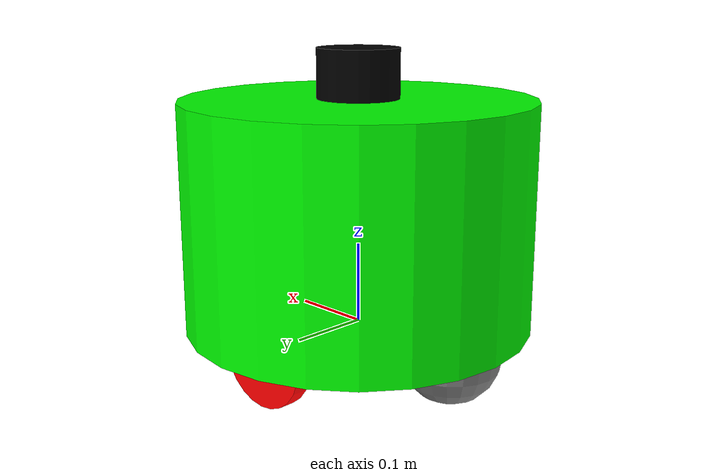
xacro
<?xml version='1.0'?>

<robot name="barrelbot" xmlns:xacro="http://www.ros.org/wiki/xacro">

  <!--xacro:include filename="$(find littlebot)/urdf/_d435i.urdf.xacro"/-->

  <xacro:include filename="barrelbot_inertial_macros.xacro" />

  <xacro:include filename="./controllers/brlb_gazebo_control.xacro" />

  <!-- MATERIALS -->

  <material name="green">
    <color rgba="0 1 0 1"/>
  </material>

  <material name="black">
    <color rgba="0 0 0 1"/>
  </material>

  <material name="red">
    <color rgba="1 0 0 1"/>
  </material>

  <material name="gray">
    <color rgba="0.5 0.5 0.5 1"/>
  </material>

  <!-- base_footprint is a fictitious link(frame) that is on the ground right below base_link origin -->
  <!--link name="base_footprint" /-->

  <!-- BASE (CHASSIS) LINK -->

  <link name="base_link">
    <visual>
      <origin xyz="0 0 0.14" rpy="0 0 0"/> <!-- origin is located at the bottom in the center of the cylinder -->
      <geometry>
        <cylinder length="0.28" radius="0.215"/>
      </geometry>
      <material name="green"/>
    </visual>
    <collision>
      <origin xyz="0 0 0.14" rpy="0 0 0"/> <!-- origin is located at the bottom in the center of the cylinder -->
      <geometry>
        <cylinder length="0.28" radius="0.215"/>
      </geometry>
    </collision>
    <xacro:inertial_cylinder mass="3.0" length="0.28" radius="0.215">
      <origin xyz="0 0 0.14" rpy="0 0 0"/> <!-- origin is the same as for visual and collision -->
    </xacro:inertial_cylinder>
  </link>

  <!-- LIDAR LINK -->

  <joint name="lidar_joint" type="fixed">
    <parent link="base_link"/>
    <child link="lidar_link"/>
    <origin xyz="0 0 0.31" rpy="0 0 0"/> <!-- z=0.31 = 0.14(vertical middle of robot body cylinder) +0.17-->
  </joint>

  <link name="lidar_link">
    <visual>
      <geometry>
        <cylinder length="0.06" radius="0.05"/>
      </geometry>
      <material name="black"/>
    </visual>
  </link>

  <!-- LEFT WHEEL LINK -->

  <joint name="left_wheel_joint" type="continuous">
    <parent link="base_link"/>
    <child link="left_wheel"/>
    <origin xyz="0 0.15 0" rpy="0 0 0"/> <!-- left wheel is located 15cm to the left of the center of the robot -->
    <axis xyz="0 1 0"/> <!-- axis of rotation is the y-axis -->
  </joint>

  <link name="left_wheel">
    <visual>
      <origin xyz="0 0 0" rpy="${pi/2} 0 0"/> <!-- pi/2 = 90 degrees or 1.57 radians (1 radian = 57.2958 degrees) -->
      <geometry>
        <cylinder length="0.02" radius="0.065"/> <!-- Diamater of the wheel is 130mm, width is 20mm -->
      </geometry>
      <material name="red"/>
    </visual>

    <collision>
      <origin xyz="0 0 0" rpy="${pi/2} 0 0"/> <!-- pi/2 = 90 degrees or 1.57 radians (1 radian = 57.2958 degrees) -->
      <geometry>
        <cylinder length="0.02" radius="0.065"/> <!-- Diamater of the wheel is 130mm, width is 20mm -->
      </geometry>
    </collision>

    <xacro:inertial_cylinder mass="0.1" length="0.02" radius="0.065">
      <origin xyz="0 0 0" rpy="${pi/2} 0 0"/> <!-- origin is the same as for visual and collision -->
    </xacro:inertial_cylinder>
  </link>

  <!-- RIGHT WHEEL LINK -->

  <joint name="right_wheel_joint" type="continuous">
    <parent link="base_link"/>
    <child link="right_wheel"/>
    <origin xyz="0 -0.15 0" rpy="0 0 0"/> <!-- right wheel is located 15cm to the right of the center of the robot -->
    <axis xyz="0 1 0"/> <!-- axis of rotation is the y-axis -->
  </joint>

  <link name="right_wheel">
    <visual>
      <origin xyz="0 0 0" rpy="${pi/2} 0 0"/> <!-- pi/2 = 90 degrees or 1.57 radians (1 radian = 57.2958 degrees) -->
      <geometry>
        <cylinder length="0.02" radius="0.065"/> <!-- Diamater of the wheel is 130mm, width is 20mm -->
      </geometry>
      <material name="red"/>
    </visual>

    <collision>
      <origin xyz="0 0 0" rpy="${pi/2} 0 0"/> <!-- pi/2 = 90 degrees or 1.57 radians (1 radian = 57.2958 degrees) -->
      <geometry>
        <cylinder length="0.02" radius="0.065"/> <!-- Diamater of the wheel is 130mm, width is 20mm -->
      </geometry>
    </collision>

    <xacro:inertial_cylinder mass="0.1" length="0.02" radius="0.065">
      <origin xyz="0 0 0" rpy="${pi/2} 0 0"/> <!-- origin is the same as for visual and collision -->
    </xacro:inertial_cylinder>
  </link>

  <!-- FRONT CASTER WHEEL LINK-->

  <joint name="caster_front_wheel_joint" type="fixed">
    <parent link="base_link"/>
    <child link="caster_front_wheel"/>
    <origin xyz="0.15 0 0" rpy="0 0 0"/> <!-- caster wheel is located 15cm to the front of the center of the robot -->
  </joint>

  <link name="caster_front_wheel">
    <visual>
      <origin xyz="0 0 0" rpy= "0 0 0"/>
      <geometry>
        <sphere radius="0.06" />
      </geometry>
      <material name="gray"/>
    </visual>

    <collision>
      <origin xyz="0 0 0" rpy= "0 0 0"/>
      <geometry>
        <sphere radius="0.06" />
      </geometry>
    </collision>

    <xacro:inertial_sphere mass="0.1" radius="0.06">
      <origin xyz="0 0 0" rpy="0 0 0"/> <!-- origin is the same as for visual and collision -->
    </xacro:inertial_sphere>
  </link>

  <!-- BACK CASTER WHEEL LINK-->

  <joint name="caster_back_wheel_joint" type="fixed">
    <parent link="base_link"/>
    <child link="caster_back_wheel"/>
    <origin xyz="-0.15 0 0" rpy="0 0 0"/> <!-- caster wheel is located 15cm to the back of the center of the robot -->
  </joint>

  <link name="caster_back_wheel">
    <visual>
      <origin xyz="0 0 0" rpy= "0 0 0"/>
      <geometry>
        <sphere radius="0.06" />
      </geometry>
      <material name="gray"/>
    </visual>

    <collision>
      <origin xyz="0 0 0" rpy= "0 0 0"/>
      <geometry>
        <sphere radius="0.06" />
      </geometry>
    </collision>

    <xacro:inertial_sphere mass="0.1" radius="0.06">
      <origin xyz="0 0 0" rpy="0 0 0"/> <!-- origin is the same as for visual and collision -->
    </xacro:inertial_sphere>
  </link>

</robot>

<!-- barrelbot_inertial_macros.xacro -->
<robot xmlns:xacro="http://www.ros.org/wiki/xacro" >

    <!-- Specify some standard inertial calculations https://en.wikipedia.org/wiki/List_of_moments_of_inertia -->
    <!-- These make use of xacro's mathematical functionality -->

    <xacro:macro name="inertial_sphere" params="mass radius *origin">
      <inertial>
        <xacro:insert_block name="origin"/>
        <mass value="${mass}" />
        <inertia ixx="${(2/5) * mass * (radius*radius)}" ixy="0.0" ixz="0.0"
                 iyy="${(2/5) * mass * (radius*radius)}" iyz="0.0"
                 izz="${(2/5) * mass * (radius*radius)}" />
      </inertial>
    </xacro:macro>

    <xacro:macro name="inertial_box" params="mass x y z *origin">
      <inertial>
        <xacro:insert_block name="origin"/>
        <mass value="${mass}" />
         <inertia ixx="${(1/12) * mass * (y*y+z*z)}" ixy="0.0" ixz="0.0"
                  iyy="${(1/12) * mass * (x*x+z*z)}" iyz="0.0"
                  izz="${(1/12) * mass * (x*x+y*y)}" />
      </inertial>
    </xacro:macro>

    <xacro:macro name="inertial_cylinder" params="mass length radius *origin">
      <inertial>
        <xacro:insert_block name="origin"/>
        <mass value="${mass}" />
        <inertia ixx="${(1/12) * mass * (3*radius*radius + length*length)}" ixy="0.0" ixz="0.0"
                 iyy="${(1/12) * mass * (3*radius*radius + length*length)}" iyz="0.0"
                 izz="${(1/2) * mass * (radius*radius)}" />
      </inertial>
    </xacro:macro>

</robot>
